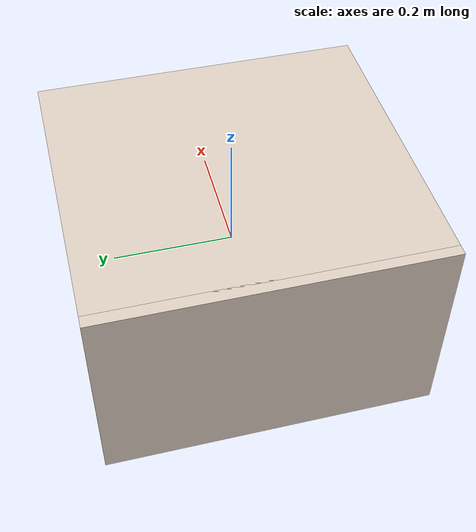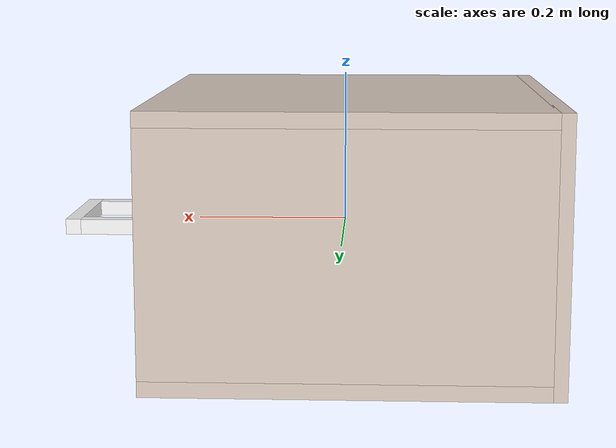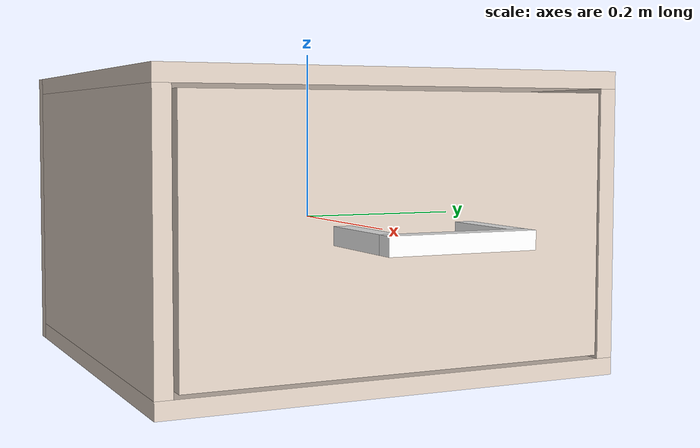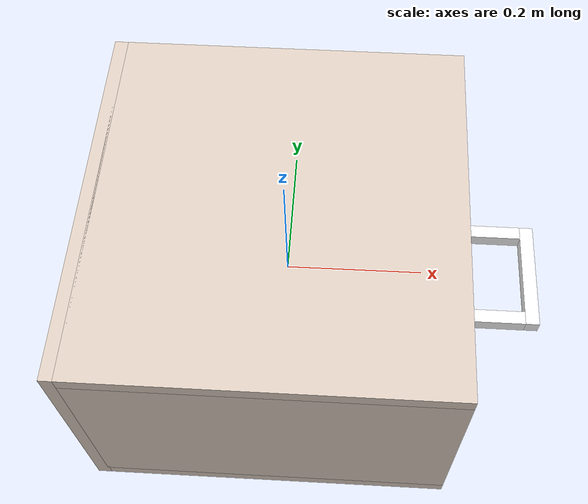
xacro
<?xml version="1.0"?>

<robot name="drawer" xmlns:xacro="http://ros.org/wiki/xacro">
    <xacro:arg name="handle_gap" default="0.10"/>
    <xacro:arg name="load_cover" default="false"/>

    <xacro:property name="drawer_height" value="0.3"/>
    <xacro:property name="drawer_width" value="0.5"/>
    <xacro:property name="drawer_length" value="0.5"/>
    <xacro:property name="drawer_mass" value="0.100"/>

    <xacro:property name="gap" value="0.005"/>
    <xacro:property name="wall_thickness" value="0.02"/>
    <xacro:property name="wall_mass" value="0.05"/>

    <xacro:property name="side_wall_height" value="${drawer_height + 2 * gap}"/>
    <xacro:property name="side_wall_length" value="${drawer_length + gap}"/>

    <xacro:property name="base_wall_width" value="${drawer_width + 2 * gap + 2 * wall_thickness}"/>
    <xacro:property name="base_wall_length" value="${drawer_length + gap}"/>

    <xacro:property name="back_wall_height" value="${side_wall_height + 2 * wall_thickness}"/>
    <xacro:property name="back_wall_length" value="${base_wall_width}"/>

    <xacro:property name="handle_gap" value="$(arg handle_gap)"/>
    <xacro:property name="handle_thickness" value="${wall_thickness}"/>
    <xacro:property name="handle_span" value="${drawer_width / 4}"/>
    <xacro:property name="mu" value="0.00"/>

    <material name="omni/Blue">
      <color rgba="0 0 0.8 1"/>
    </material>
    <material name="omni/Red">
      <color rgba="1 0 0 1"/>
    </material>
    <material name="omni/White">
      <color rgba="1 1 1 1"/>
    </material>
    <material name="omni/Green">
      <color rgba="0 1 0 1"/>
    </material>
    <material name="omni/Yellow">
      <color rgba="1 1 0 1"/>
    </material>
    <material name="omni/LightGrey">
      <color rgba="0.6 0.6 0.6 1"/>
    </material>
    <material name="omni/DarkGrey">
      <color rgba="0.4 0.4 0.4 1"/>
    </material>
    <material name="brown">
      <color rgba="0.87 0.81 0.76 1.0"/>
    </material>

    <!-- RVIZ Configuration -->
    <link name="base_link" />

    <joint name="base_link__drawer" type="prismatic">
      <origin rpy="0 0 0" xyz="0 0 0"/>
      <parent link="base_link"/>
      <child link="drawer"/>
      <dynamics damping="1.0" friction="1.0"/>
      <limit effort="0.1" lower="0.0" upper="0.5" velocity="10.0"/>
      <axis xyz="1 0 0"/>
    </joint>

    <link name="drawer">
      <visual>
        <origin rpy="0 0 0" xyz="0 0 0"/>
        <geometry>
          <box size="${drawer_length} ${drawer_width} ${drawer_height}"/>
        </geometry>
        <material name="brown"/>
      </visual>
      <collision>
          <origin rpy="0 0 0" xyz="0 0 0"/>
          <geometry>
            <box size="${drawer_length} ${drawer_width} ${drawer_height}"/>
          </geometry>
          <contact_coefficients mu="${mu}"/>
      </collision>
      <inertial>
        <!-- CENTER OF MASS -->
        <origin rpy="0 0 0" xyz="0 0 0"/>
        <mass value="${drawer_mass}"/>
        <!-- box inertia: 1/12*m(y^2+z^2), ... -->
        <inertia ixx="${1/2 * drawer_mass * (drawer_width**2 + drawer_height**2)}" ixy="0" ixz="0" iyy="${1/2 * drawer_mass * (drawer_length**2 + drawer_height**2)}" iyz="0" izz="${1/2 * drawer_mass * (drawer_length**2 + drawer_width**2)}"/>
      </inertial>
    </link>
    <gazebo reference="drawer">
      <material>Gazebo/Wood</material>
    </gazebo>

    <joint name="base_link__left_wall" type="fixed">
      <origin rpy="0 0 0" xyz="-${gap} -${ (drawer_width / 2 + wall_thickness / 2 ) + gap} 0"/>
      <parent link="base_link"/>
      <child link="left_wall"/>
    </joint>

    <link name="left_wall">
      <visual>
        <origin rpy="0 0 0" xyz="0 0 0"/>
        <geometry>
          <box size="${side_wall_length} ${wall_thickness} ${side_wall_height}"/>
        </geometry>
        <material name="brown"/>
      </visual>
      <collision>
          <origin rpy="0 0 0" xyz="0 0 0.0"/>
          <geometry>
            <box size="${side_wall_length} ${wall_thickness} ${side_wall_height}"/>
          </geometry>
      </collision>
      <inertial>
        <!-- CENTER OF MASS -->
        <origin rpy="0 0 0" xyz="0 0 0"/>
        <mass value="${wall_mass}"/>
        <!-- box inertia: 1/12*m(y^2+z^2), ... -->
        <inertia ixx="${1/2 * wall_mass * (wall_thickness**2 + side_wall_height**2)}" ixy="0" ixz="0" iyy="${1/2 * wall_mass * (side_wall_length**2 + side_wall_height**2)}" iyz="0" izz="${1/2 * wall_mass * (side_wall_length**2 + wall_thickness**2)}"/>
      </inertial>
    </link>

    <joint name="base_link__right_wall" type="fixed">
      <origin rpy="0 0 0" xyz="-${gap} ${(drawer_width/2 + wall_thickness / 2 ) + gap} 0"/>
      <parent link="base_link"/>
      <child link="right_wall"/>
    </joint>

     <link name="right_wall">
      <visual>
        <origin rpy="0 0 0" xyz="0 0 0"/>
        <geometry>
          <box size="${side_wall_length} ${wall_thickness} ${side_wall_height}"/>
        </geometry>
        <material name="brown"/>
      </visual>
      <collision>
          <origin rpy="0 0 0" xyz="0 0 0.0"/>
          <geometry>
            <box size="${side_wall_length} ${wall_thickness} ${side_wall_height}"/>
          </geometry>
      </collision>
      <inertial>
        <!-- CENTER OF MASS -->
        <origin rpy="0 0 0" xyz="0 0 0"/>
        <mass value="${wall_mass}"/>
        <!-- box inertia: 1/12*m(y^2+z^2), ... -->
        <inertia ixx="${1/2 * wall_mass * (wall_thickness**2 + side_wall_height**2)}" ixy="0" ixz="0" iyy="${1/2 * wall_mass * (side_wall_length**2 + side_wall_height**2)}" iyz="0" izz="${1/2 * wall_mass * (side_wall_length**2 + wall_thickness**2)}"/>
      </inertial>
    </link>

    <joint name="base_link__bottom_wall" type="fixed">
      <origin rpy="0 0 0" xyz="-${gap} 0 -${drawer_height / 2 + wall_thickness / 2 + gap}"/>
      <parent link="base_link"/>
      <child link="bottom_wall"/>
    </joint>

    <link name="bottom_wall">
      <visual>
        <origin rpy="0 0 0" xyz="0 0 0"/>
        <geometry>
          <box size="${base_wall_length} ${base_wall_width} ${wall_thickness}"/>
        </geometry>
        <material name="brown"/>
      </visual>
      <collision>
          <origin rpy="0 0 0" xyz="0 0 0.0"/>
          <geometry>
            <box size="${base_wall_length} ${base_wall_width} ${wall_thickness}"/>
          </geometry>
      </collision>
      <inertial>
        <!-- CENTER OF MASS -->
        <origin rpy="0 0 0" xyz="0 0 0"/>
        <mass value="${wall_mass}"/>
        <!-- box inertia: 1/12*m(y^2+z^2), ... -->
        <inertia ixx="${1/2 * wall_mass * (wall_thickness**2 + base_wall_width**2)}" ixy="0" ixz="0" iyy="${1/2 * wall_mass * (base_wall_length**2 + wall_thickness**2)}" iyz="0" izz="${1/2 * wall_mass * (base_wall_length**2 + base_wall_width**2)}"/>
      </inertial>
    </link>

    <joint name="base_link__top_wall" type="fixed">
      <origin rpy="0 0 0" xyz="-${gap} 0 ${drawer_height / 2 + wall_thickness / 2 + gap}"/>
      <parent link="base_link"/>
      <child link="top_wall"/>
    </joint>

    <link name="top_wall">
      <visual>
        <origin rpy="0 0 0" xyz="0 0 0"/>
        <geometry>
          <box size="${base_wall_length} ${base_wall_width} ${wall_thickness}"/>
        </geometry>
        <material name="brown"/>
      </visual>
      <collision>
          <origin rpy="0 0 0" xyz="0 0 0.0"/>
          <geometry>
            <box size="${base_wall_length} ${base_wall_width} ${wall_thickness}"/>
          </geometry>
      </collision>
      <inertial>
        <!-- CENTER OF MASS -->
        <origin rpy="0 0 0" xyz="0 0 0"/>
        <mass value="${wall_mass}"/>
        <!-- box inertia: 1/12*m(y^2+z^2), ... -->
        <inertia ixx="${1/2 * wall_mass * (wall_thickness**2 + base_wall_width**2)}" ixy="0" ixz="0" iyy="${1/2 * wall_mass * (base_wall_length**2 + wall_thickness**2)}" iyz="0" izz="${1/2 * wall_mass * (base_wall_length**2 + base_wall_width**2)}"/>
      </inertial>
    </link>

    <joint name="base_link__back_wall" type="fixed">
      <origin rpy="0 0 0" xyz="-${drawer_length / 2 + gap + wall_thickness / 2} 0 0"/>
      <parent link="base_link"/>
      <child link="back_wall"/>
    </joint>

    <link name="back_wall">
      <visual>
        <origin rpy="0 0 0" xyz="0 0 0"/>
        <geometry>
          <box size="${wall_thickness} ${back_wall_length} ${back_wall_height}"/>
        </geometry>
        <material name="brown"/>
      </visual>
      <collision>
          <origin rpy="0 0 0" xyz="0 0 0.0"/>
          <geometry>
            <box size="${wall_thickness} ${back_wall_length} ${back_wall_height}"/>
          </geometry>
      </collision>
      <inertial>
        <!-- CENTER OF MASS -->
        <origin rpy="0 0 0" xyz="0 0 0"/>
        <mass value="${wall_mass}"/>
        <!-- box inertia: 1/12*m(y^2+z^2), ... -->
        <inertia ixx="${1/2 * wall_mass * (back_wall_length**2 + back_wall_height**2)}" ixy="0" ixz="0" iyy="${1/2 * wall_mass * (back_wall_height**2 + wall_thickness**2)}" iyz="0" izz="${1/2 * wall_mass * (back_wall_length**2 + back_wall_length**2)}"/>
      </inertial>
    </link>

    <joint name="drawer__handle_left" type="fixed">
      <origin rpy="0 0 0" xyz="${drawer_length / 2 + handle_gap / 2} -${handle_span/2 + handle_thickness/2} 0"/>
      <parent link="drawer"/>
      <child link="handle_left"/>
    </joint>

    <link name="handle_left">
      <visual>
        <origin rpy="0 0 0" xyz="0 0 0"/>
        <geometry>
          <box size="${handle_gap} ${handle_thickness} ${handle_thickness}"/>
        </geometry>
        <material name="omni/White"/>
      </visual>
      <collision>
          <origin rpy="0 0 0" xyz="0 0 0.0"/>
          <geometry>
            <box size="${handle_gap} ${handle_thickness} ${handle_thickness}"/>
          </geometry>
      </collision>
      <inertial>
        <!-- CENTER OF MASS -->
        <origin rpy="0 0 0" xyz="0 0 0"/>
        <mass value="${wall_mass}"/>
        <!-- box inertia: 1/12*m(y^2+z^2), ... -->
        <inertia ixx="${1/2 * wall_mass * (handle_thickness**2 + handle_thickness**2)}" ixy="0" ixz="0" iyy="${1/2 * wall_mass * (handle_thickness**2 + handle_gap**2)}" iyz="0" izz="${1/2 * wall_mass * (handle_thickness**2 + handle_gap**2)}"/>
      </inertial>
    </link>

    <joint name="drawer__handle_right" type="fixed">
      <origin rpy="0 0 0" xyz="${drawer_length / 2 + handle_gap / 2} ${handle_span/2 + handle_thickness/2} 0"/>
      <parent link="drawer"/>
      <child link="handle_right"/>
    </joint>

    <link name="handle_right">
      <visual>
        <origin rpy="0 0 0" xyz="0 0 0"/>
        <geometry>
          <box size="${handle_gap} ${handle_thickness} ${handle_thickness}"/>
        </geometry>
        <material name="omni/White"/>
      </visual>
      <collision>
          <origin rpy="0 0 0" xyz="0 0 0.0"/>
          <geometry>
            <box size="${handle_gap} ${handle_thickness} ${handle_thickness}"/>
          </geometry>
      </collision>
      <inertial>
        <!-- CENTER OF MASS -->
        <origin rpy="0 0 0" xyz="0 0 0"/>
        <mass value="${wall_mass}"/>
        <!-- box inertia: 1/12*m(y^2+z^2), ... -->
        <inertia ixx="${1/2 * wall_mass * (handle_thickness**2 + handle_thickness**2)}" ixy="0" ixz="0" iyy="${1/2 * wall_mass * (handle_thickness**2 + handle_gap**2)}" iyz="0" izz="${1/2 * wall_mass * (handle_thickness**2 + handle_gap**2)}"/>
      </inertial>
    </link>

    <joint name="drawer__handle_grip" type="fixed">
      <origin rpy="0 0 0" xyz="${drawer_length / 2 + handle_gap + handle_thickness / 2} 0 0"/>
      <parent link="drawer"/>
      <child link="handle_grip"/>
    </joint>

    <link name="handle_grip">
      <visual>
        <origin rpy="0 0 0" xyz="0 0 0"/>
        <geometry>
          <box size="${handle_thickness} ${handle_span + 2 * handle_thickness} ${handle_thickness}"/>
        </geometry>
        <material name="omni/White"/>
      </visual>
      <collision>
          <origin rpy="0 0 0" xyz="0 0 0.0"/>
          <geometry>
            <box size="${handle_thickness} ${handle_span + 2 * handle_thickness} ${handle_thickness}"/>
          </geometry>
      </collision>

      <inertial>
        <!-- CENTER OF MASS -->
        <origin rpy="0 0 0" xyz="0 0 0"/>
        <mass value="${wall_mass}"/>
        <!-- box inertia: 1/12*m(y^2+z^2), ... -->
        <inertia ixx="${1/2 * wall_mass * (handle_thickness**2 + (handle_span + 2 * handle_thickness)**2)}" ixy="0" ixz="0" iyy="${1/2 * wall_mass * (handle_thickness**2 + handle_thickness**2)}" iyz="0" izz="${1/2 * wall_mass * (handle_thickness**2 + (handle_span + 2 * handle_thickness)**2)}"/>
      </inertial>
    </link>

  <xacro:if value="$(arg load_cover)">
    <link name="handle_top_cover">
      <visual>
        <origin rpy="0 0 0" xyz="0 0 0"/>
        <geometry>
          <box size="${handle_gap + handle_thickness} ${handle_span + 2 * handle_thickness} ${handle_thickness*0.3}"/>
        </geometry>
        <material name="omni/White"/>
      </visual>
      <collision>
          <origin rpy="0 0 0" xyz="0 0 0.0"/>
          <geometry>
            <box size="${handle_gap + handle_thickness} ${handle_span + 2 * handle_thickness} ${handle_thickness*0.3}"/>
          </geometry>
          <contact_coefficients mu="${mu}"/>
      </collision>

      <inertial>
        <origin rpy="0 0 0" xyz="0 0 0"/>
        <mass value="${wall_mass}"/>
        <inertia ixx="${1/2 * wall_mass * (handle_thickness**2 + (handle_span + 2 * handle_thickness)**2)}" ixy="0" ixz="0" iyy="${1/2 * wall_mass * (handle_gap**2 + handle_thickness**2)}" iyz="0" izz="${1/2 * wall_mass * (handle_gap**2 + (handle_span + 2 * handle_thickness)**2)}"/>
      </inertial>
    </link>

    <joint name="d_2_htc" type="fixed">
      <origin rpy="0 0 0" xyz="${drawer_length / 2 + handle_gap/2 + handle_thickness/2} 0 ${-handle_thickness*0.3/2 - 2 * handle_thickness }"/>
      <parent link="drawer"/>
      <child link="handle_top_cover"/>
    </joint>

    <link name="handle_bottom_cover">
        <visual>
          <origin rpy="0 0 0" xyz="0 0 0"/>
          <geometry>
            <box size="${handle_thickness*0.3} ${handle_span + 2 * handle_thickness} ${(handle_gap + handle_thickness)*1.4142}"/>
          </geometry>
          <material name="omni/White"/>
        </visual>
        <collision>
            <origin rpy="0 0 0" xyz="0 0 0.0"/>
            <geometry>
              <box size="${handle_thickness*0.3} ${handle_span + 2 * handle_thickness} ${(2*handle_thickness)*1.4142}"/>
            </geometry>
            <contact_coefficients mu="${mu}"/>
        </collision>

        <inertial>
          <origin rpy="0 0 0" xyz="0 0 0"/>
          <mass value="${wall_mass}"/>
          <inertia ixx="${1/2 * wall_mass * (handle_thickness**2 + (handle_span + 2 * handle_thickness)**2)}" ixy="0" ixz="0" iyy="${1/2 * wall_mass * (handle_gap**2 + handle_thickness**2)}" iyz="0" izz="${1/2 * wall_mass * (handle_gap**2 + (handle_span + 2 * handle_thickness)**2)}"/>
        </inertial>
      </link>

    <joint name="d_2_hbc" type="fixed">
      <origin rpy="0 0.78539816339 0" xyz="${-handle_thickness*0.1/2} 0 ${-(handle_gap + handle_thickness)/2}"/>
      <parent link="handle_top_cover"/>
      <child link="handle_bottom_cover"/>
    </joint>
  </xacro:if>

</robot>
